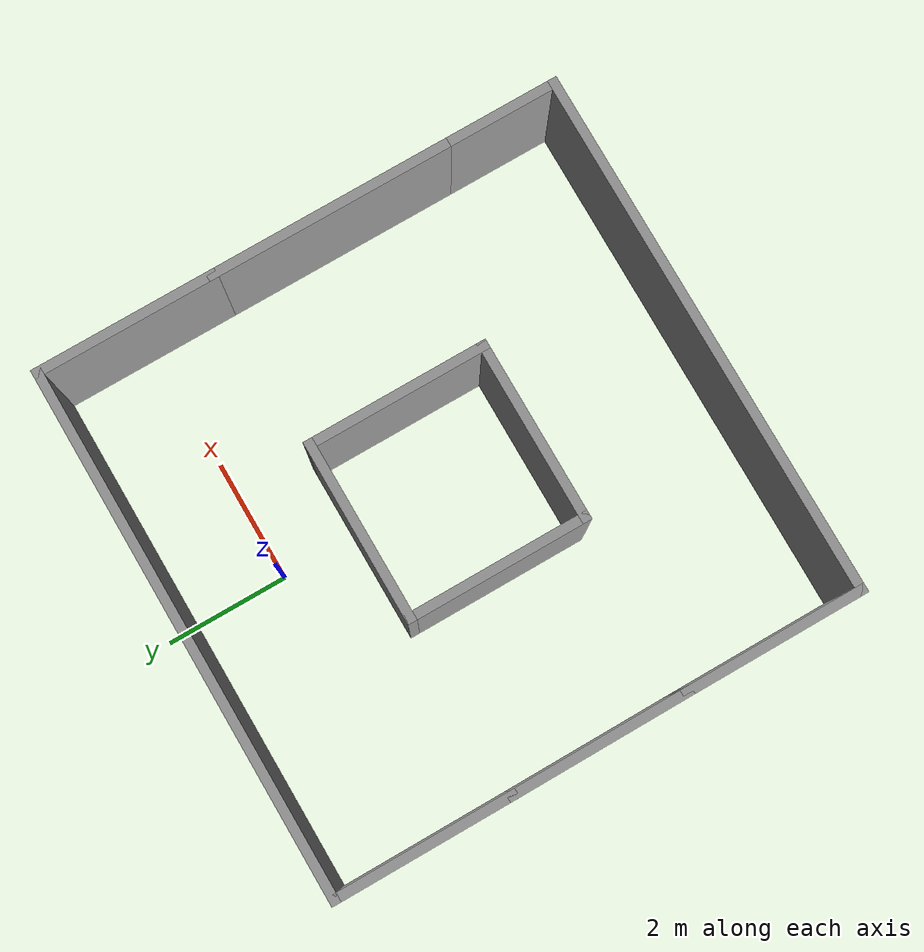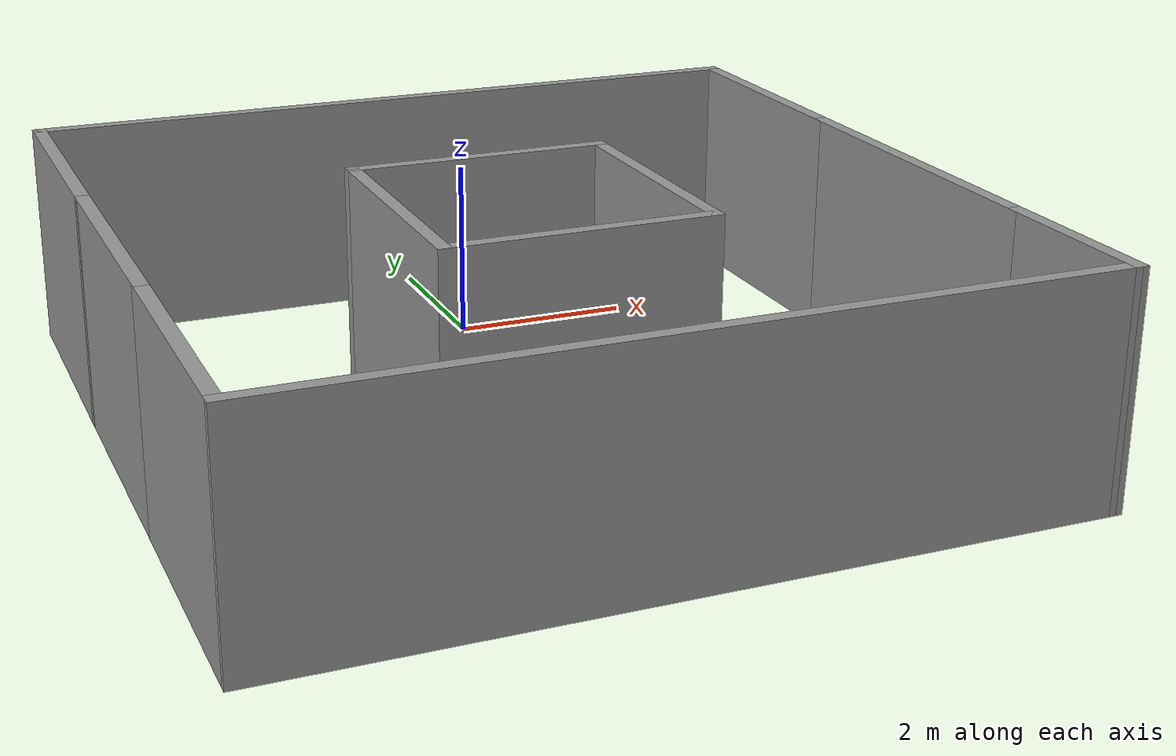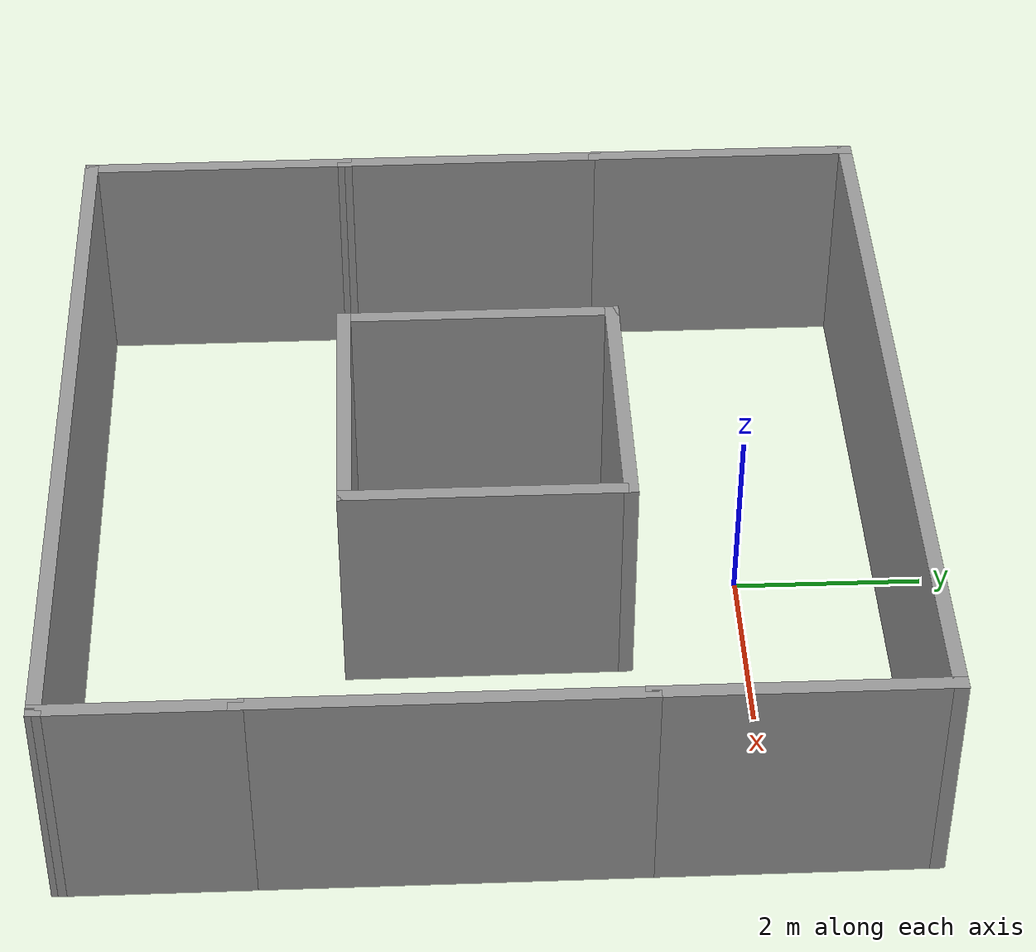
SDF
<?xml version='1.0'?>
<sdf version='1.7'>
  <model name='Predator1'>
    <pose>-0.255084 -2.69504 0 0 -0 0</pose>
    <link name='Wall_10'>
      <collision name='Wall_10_Collision'>
        <geometry>
          <box>
            <size>3 0.15 2.5</size>
          </box>
        </geometry>
        <pose>0 0 1.25 0 -0 0</pose>
      </collision>
      <visual name='Wall_10_Visual'>
        <pose>0 0 1.25 0 -0 0</pose>
        <geometry>
          <box>
            <size>3 0.15 2.5</size>
          </box>
        </geometry>
        <material>
          <script>
            <uri>file://media/materials/scripts/gazebo.material</uri>
            <name>Gazebo/Grey</name>
          </script>
          <ambient>1 1 1 1</ambient>
        </material>
        <meta>
          <layer>0</layer>
        </meta>
      </visual>
      <pose>8.4e-05 1.42504 0 0 -0 3.14159</pose>
    </link>
    <link name='Wall_27'>
      <collision name='Wall_27_Collision'>
        <geometry>
          <box>
            <size>3 0.15 2.5</size>
          </box>
        </geometry>
        <pose>0 0 1.25 0 -0 0</pose>
      </collision>
      <visual name='Wall_27_Visual'>
        <pose>0 0 1.25 0 -0 0</pose>
        <geometry>
          <box>
            <size>3 0.15 2.5</size>
          </box>
        </geometry>
        <material>
          <script>
            <uri>file://media/materials/scripts/gazebo.material</uri>
            <name>Gazebo/Grey</name>
          </script>
          <ambient>1 1 1 1</ambient>
        </material>
        <meta>
          <layer>0</layer>
        </meta>
      </visual>
      <pose>4.27508 2.85004 0 0 -0 1.5708</pose>
    </link>
    <link name='Wall_34'>
      <collision name='Wall_34_Collision'>
        <geometry>
          <box>
            <size>3 0.15 2.5</size>
          </box>
        </geometry>
        <pose>0 0 1.25 0 -0 0</pose>
      </collision>
      <visual name='Wall_34_Visual'>
        <pose>0 0 1.25 0 -0 0</pose>
        <geometry>
          <box>
            <size>3 0.15 2.5</size>
          </box>
        </geometry>
        <material>
          <script>
            <uri>file://media/materials/scripts/gazebo.material</uri>
            <name>Gazebo/Grey</name>
          </script>
          <ambient>1 1 1 1</ambient>
        </material>
        <meta>
          <layer>0</layer>
        </meta>
      </visual>
      <pose>-4.27492 2.85004 0 0 -0 1.5708</pose>
    </link>
    <link name='Wall_36'>
      <collision name='Wall_36_Collision'>
        <geometry>
          <box>
            <size>8.7 0.15 2.5</size>
          </box>
        </geometry>
        <pose>0 0 1.25 0 -0 0</pose>
      </collision>
      <visual name='Wall_36_Visual'>
        <pose>0 0 1.25 0 -0 0</pose>
        <geometry>
          <box>
            <size>8.7 0.15 2.5</size>
          </box>
        </geometry>
        <material>
          <script>
            <uri>file://media/materials/scripts/gazebo.material</uri>
            <name>Gazebo/Grey</name>
          </script>
          <ambient>1 1 1 1</ambient>
        </material>
        <meta>
          <layer>0</layer>
        </meta>
      </visual>
      <pose>8.4e-05 4.27504 0 0 -0 0</pose>
    </link>
    <link name='Wall_44'>
      <collision name='Wall_44_Collision'>
        <geometry>
          <box>
            <size>4 0.15 2.5</size>
          </box>
        </geometry>
        <pose>0 0 1.25 0 -0 0</pose>
      </collision>
      <visual name='Wall_44_Visual'>
        <pose>0 0 1.25 0 -0 0</pose>
        <geometry>
          <box>
            <size>4 0.15 2.5</size>
          </box>
        </geometry>
        <material>
          <script>
            <uri>file://media/materials/scripts/gazebo.material</uri>
            <name>Gazebo/Grey</name>
          </script>
          <ambient>1 1 1 1</ambient>
        </material>
        <meta>
          <layer>0</layer>
        </meta>
      </visual>
      <pose>4.27508 -0.499956 0 0 -0 -1.5708</pose>
    </link>
    <link name='Wall_46'>
      <collision name='Wall_46_Collision'>
        <geometry>
          <box>
            <size>2 0.15 2.5</size>
          </box>
        </geometry>
        <pose>0 0 1.25 0 -0 0</pose>
      </collision>
      <visual name='Wall_46_Visual'>
        <pose>0 0 1.25 0 -0 0</pose>
        <geometry>
          <box>
            <size>2 0.15 2.5</size>
          </box>
        </geometry>
        <material>
          <script>
            <uri>file://media/materials/scripts/gazebo.material</uri>
            <name>Gazebo/Grey</name>
          </script>
          <ambient>1 1 1 1</ambient>
        </material>
        <meta>
          <layer>0</layer>
        </meta>
      </visual>
      <pose>4.27508 -3.34996 0 0 -0 -1.5708</pose>
    </link>
    <link name='Wall_50'>
      <collision name='Wall_50_Collision'>
        <geometry>
          <box>
            <size>2.99002 0.15 2.5</size>
          </box>
        </geometry>
        <pose>0 0 1.25 0 -0 0</pose>
      </collision>
      <visual name='Wall_50_Visual'>
        <pose>0 0 1.25 0 -0 0</pose>
        <geometry>
          <box>
            <size>2.99002 0.15 2.5</size>
          </box>
        </geometry>
        <material>
          <script>
            <uri>file://media/materials/scripts/gazebo.material</uri>
            <name>Gazebo/Grey</name>
          </script>
          <ambient>1 1 1 1</ambient>
        </material>
        <meta>
          <layer>0</layer>
        </meta>
      </visual>
      <pose>-4.26992 0.005044 0 0 -0 -1.56727</pose>
    </link>
    <link name='Wall_56'>
      <collision name='Wall_56_Collision'>
        <geometry>
          <box>
            <size>3 0.15 2.5</size>
          </box>
        </geometry>
        <pose>0 0 1.25 0 -0 0</pose>
      </collision>
      <visual name='Wall_56_Visual'>
        <pose>0 0 1.25 0 -0 0</pose>
        <geometry>
          <box>
            <size>3 0.15 2.5</size>
          </box>
        </geometry>
        <material>
          <script>
            <uri>file://media/materials/scripts/gazebo.material</uri>
            <name>Gazebo/Grey</name>
          </script>
          <ambient>1 1 1 1</ambient>
        </material>
        <meta>
          <layer>0</layer>
        </meta>
      </visual>
      <pose>-4.26492 -2.82996 0 0 -0 -1.5708</pose>
    </link>
    <link name='Wall_58'>
      <collision name='Wall_58_Collision'>
        <geometry>
          <box>
            <size>8.69002 0.15 2.5</size>
          </box>
        </geometry>
        <pose>0 0 1.25 0 -0 0</pose>
      </collision>
      <visual name='Wall_58_Visual'>
        <pose>0 0 1.25 0 -0 0</pose>
        <geometry>
          <box>
            <size>8.69002 0.15 2.5</size>
          </box>
        </geometry>
        <material>
          <script>
            <uri>file://media/materials/scripts/gazebo.material</uri>
            <name>Gazebo/Grey</name>
          </script>
          <ambient>1 1 1 1</ambient>
        </material>
        <meta>
          <layer>0</layer>
        </meta>
      </visual>
      <pose>0.005084 -4.26996 0 0 -0 -0.001171</pose>
    </link>
    <link name='Wall_6'>
      <collision name='Wall_6_Collision'>
        <geometry>
          <box>
            <size>3 0.15 2.5</size>
          </box>
        </geometry>
        <pose>0 0 1.25 0 -0 0</pose>
      </collision>
      <visual name='Wall_6_Visual'>
        <pose>0 0 1.25 0 -0 0</pose>
        <geometry>
          <box>
            <size>3 0.15 2.5</size>
          </box>
        </geometry>
        <material>
          <script>
            <uri>file://media/materials/scripts/gazebo.material</uri>
            <name>Gazebo/Grey</name>
          </script>
          <ambient>1 1 1 1</ambient>
        </material>
        <meta>
          <layer>0</layer>
        </meta>
      </visual>
      <pose>-1.42492 4.4e-05 0 0 -0 -1.5708</pose>
    </link>
    <link name='Wall_7'>
      <collision name='Wall_7_Collision'>
        <geometry>
          <box>
            <size>3 0.15 2.5</size>
          </box>
        </geometry>
        <pose>0 0 1.25 0 -0 0</pose>
      </collision>
      <visual name='Wall_7_Visual'>
        <pose>0 0 1.25 0 -0 0</pose>
        <geometry>
          <box>
            <size>3 0.15 2.5</size>
          </box>
        </geometry>
        <material>
          <script>
            <uri>file://media/materials/scripts/gazebo.material</uri>
            <name>Gazebo/Grey</name>
          </script>
          <ambient>1 1 1 1</ambient>
        </material>
        <meta>
          <layer>0</layer>
        </meta>
      </visual>
      <pose>8.4e-05 -1.42496 0 0 -0 0</pose>
    </link>
    <link name='Wall_9'>
      <collision name='Wall_9_Collision'>
        <geometry>
          <box>
            <size>3 0.15 2.5</size>
          </box>
        </geometry>
        <pose>0 0 1.25 0 -0 0</pose>
      </collision>
      <visual name='Wall_9_Visual'>
        <pose>0 0 1.25 0 -0 0</pose>
        <geometry>
          <box>
            <size>3 0.15 2.5</size>
          </box>
        </geometry>
        <material>
          <script>
            <uri>file://media/materials/scripts/gazebo.material</uri>
            <name>Gazebo/Grey</name>
          </script>
          <ambient>1 1 1 1</ambient>
        </material>
        <meta>
          <layer>0</layer>
        </meta>
      </visual>
      <pose>1.42508 4.4e-05 0 0 -0 1.5708</pose>
    </link>
    <static>1</static>
  </model>
</sdf>
